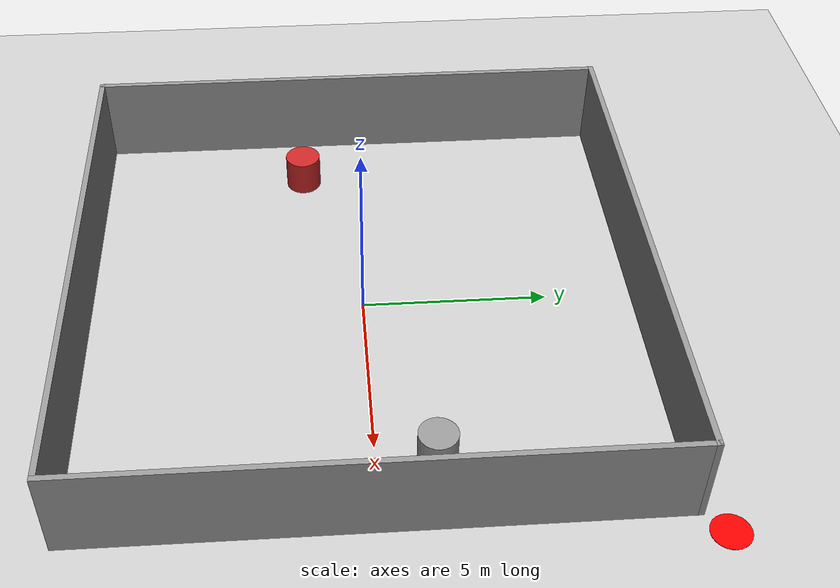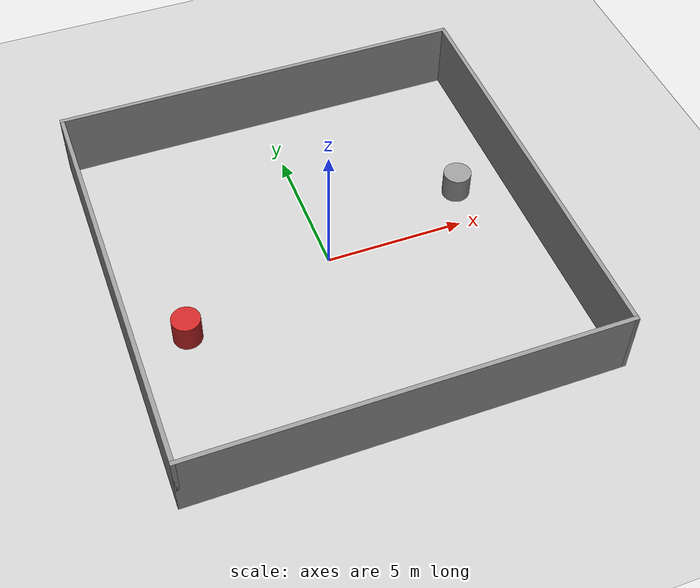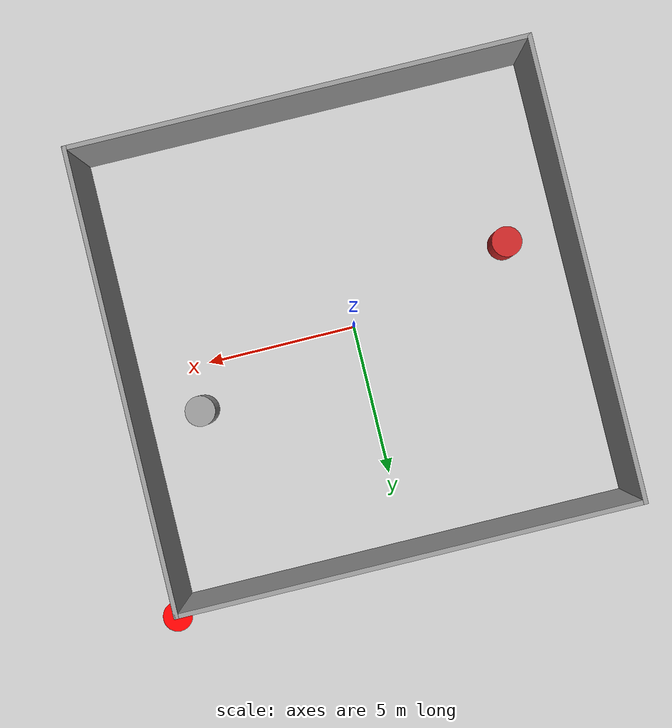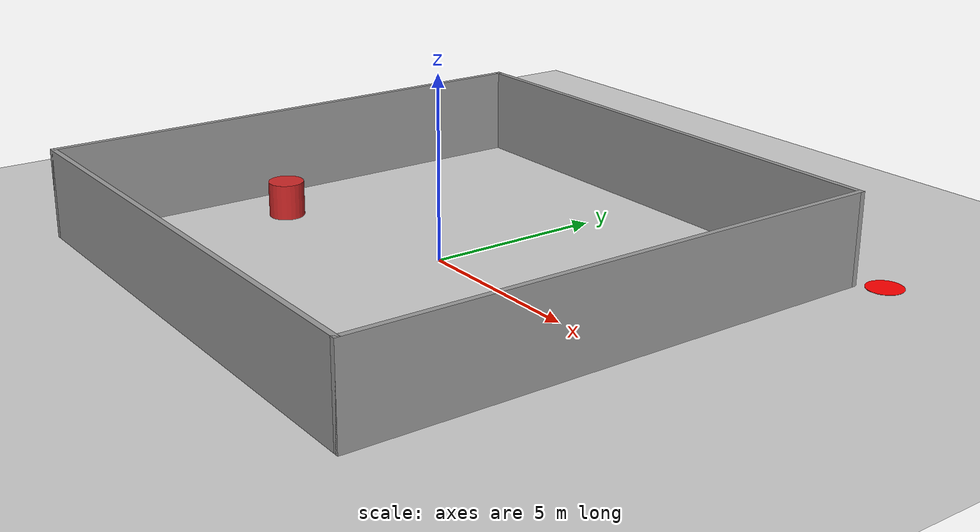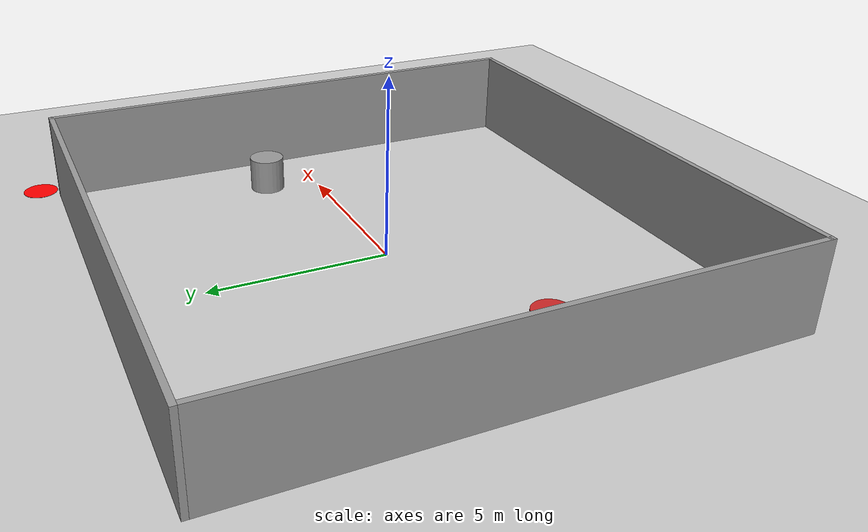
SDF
<?xml version="1.0" ?>
<sdf version="1.7">
  <world name="default">

    <!-- World properties -->
    <gravity>0 0 -9.8</gravity>
    <magnetic_field>6e-06 2.3e-05 -4.2e-05</magnetic_field>
    <atmosphere type='adiabatic'/>
    <scene>
      <ambient>0.4 0.4 0.4 1</ambient>
      <background>0.7 0.7 0.7 1</background>
      <shadows>0</shadows>
    </scene>
    <audio>
      <device>default</device>
    </audio>
    <wind/>
    <spherical_coordinates>
      <surface_model>EARTH_WGS84</surface_model>
      <latitude_deg>0</latitude_deg>
      <longitude_deg>0</longitude_deg>
      <elevation>0</elevation>
      <heading_deg>0</heading_deg>
    </spherical_coordinates>

    <physics type="ode">

      <!-- Physics x1 realtime-->
      <max_step_size>0.001</max_step_size>
      <real_time_update_rate>1000.0</real_time_update_rate>
      <real_time_factor>1</real_time_factor>

      <ode>
        <solver>
          <type>quick</type>
          <iters>150</iters>
          <precon_iters>0</precon_iters>
          <sor>1.400000</sor>
          <use_dynamic_moi_rescaling>1</use_dynamic_moi_rescaling>
        </solver>
        <constraints>
          <cfm>0.00001</cfm>
          <erp>0.2</erp>
          <contact_max_correcting_vel>2000.000000</contact_max_correcting_vel>
          <contact_surface_layer>0.01000</contact_surface_layer>
        </constraints>
      </ode>
    </physics>

    <plugin name="gazebo_ros_state" filename="libgazebo_ros_state.so">
      <ros>
        <namespace>/gazebo_drl</namespace>
        <argument>model_states:=model_states_plug</argument>
        <argument>link_states:=link_states_plug</argument>
      </ros>
      <update_rate>10.0</update_rate>
    </plugin>

    <!-- A camera -->
    <gui fullscreen='0'>
      <camera name='user_camera'>
        <pose>0 0 27.8175 3.14159 1.57079 3.14159</pose>
        <view_controller>orbit</view_controller>
        <projection_type>perspective</projection_type>
      </camera>
    </gui>

    <!-- A global light source -->
    <include>
      <uri>model://sun</uri>
    </include>

    <!-- A ground plane -->
    <include>
      <uri>model://ground_plane</uri>
    </include>

    <!-- Goal -->
    <include>
      <uri>model://goal_box</uri>
      <pose>8.0 8.0 0.0 0 0 0</pose>
    </include>

    <!-- Walls -->

    <include>
      <uri>model://wall_outler</uri>
    </include>

    <!-- Obstacle -->

    <include>
      <uri>model://cylinder_obstacle_1</uri>
      <pose>5.5 1.5 0.5 0 0 0</pose>
    </include>

    <include>
      <uri>model://cylinder_obstacle_2</uri>
      <pose>-5.5 -1.5 0.5 0 0 0</pose>
    </include>

  </world>
</sdf>

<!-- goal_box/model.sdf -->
<sdf version='1.6'>
  <model name='goal_box'>
    <pose frame=''>0 0 0 0 -0 -1.5708</pose>
    <link name='goal_box'>
      <visual name='goal_box'>
        <pose frame=''>0 0 0.0005 0 -0 0</pose>
        <geometry>
          <cylinder>
            <radius>0.5</radius>
            <length>0.01</length>
          </cylinder>
        </geometry>
        <material>
          <script>
            <uri>file://media/materials/scripts/gazebo.material</uri>
            <name>Gazebo/Grey</name>
          </script>
          <ambient>1 0 0 1</ambient>
        </material>
      </visual>
      <pose frame=''>0 0 0 0 -0 0</pose>
    </link>
    <static>1</static>
  </model>
</sdf>

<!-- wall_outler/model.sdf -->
<sdf version='1.7'>
  <model name='wall_outler'>
    <pose>0 0 0 0 -0 0</pose>
    <link name='Wall_1'>
      <collision name='Wall_1_Collision'>
        <geometry>
          <box>
            <size>15 0.15 2.5</size>
          </box>
        </geometry>
        <pose>0 0 1.25 0 -0 0</pose>
      </collision>
      <visual name='Wall_1_Visual'>
        <pose>0 0 1.25 0 -0 0</pose>
        <geometry>
          <box>
            <size>15 0.15 2.5</size>
          </box>
        </geometry>
        <material>
          <script>
            <uri>file://media/materials/scripts/gazebo.material</uri>
            <name>Gazebo/Grey</name>
          </script>
          <ambient>1 1 1 1</ambient>
        </material>
        <meta>
          <layer>0</layer>
        </meta>
      </visual>
      <pose>-0 -7.425 0 0 -0 0</pose>
    </link>
    <link name='Wall_2'>
      <collision name='Wall_2_Collision'>
        <geometry>
          <box>
            <size>15 0.15 2.5</size>
          </box>
        </geometry>
        <pose>0 0 1.25 0 -0 0</pose>
      </collision>
      <visual name='Wall_2_Visual'>
        <pose>0 0 1.25 0 -0 0</pose>
        <geometry>
          <box>
            <size>15 0.15 2.5</size>
          </box>
        </geometry>
        <material>
          <script>
            <uri>file://media/materials/scripts/gazebo.material</uri>
            <name>Gazebo/Grey</name>
          </script>
          <ambient>1 1 1 1</ambient>
        </material>
        <meta>
          <layer>0</layer>
        </meta>
      </visual>
      <pose>7.425 -0 0 0 -0 1.5708</pose>
    </link>
    <link name='Wall_3'>
      <collision name='Wall_3_Collision'>
        <geometry>
          <box>
            <size>15 0.15 2.5</size>
          </box>
        </geometry>
        <pose>0 0 1.25 0 -0 0</pose>
      </collision>
      <visual name='Wall_3_Visual'>
        <pose>0 0 1.25 0 -0 0</pose>
        <geometry>
          <box>
            <size>15 0.15 2.5</size>
          </box>
        </geometry>
        <material>
          <script>
            <uri>file://media/materials/scripts/gazebo.material</uri>
            <name>Gazebo/Grey</name>
          </script>
          <ambient>1 1 1 1</ambient>
        </material>
        <meta>
          <layer>0</layer>
        </meta>
      </visual>
      <pose>-0 7.425 0 0 -0 3.14159</pose>
    </link>
    <link name='Wall_4'>
      <collision name='Wall_4_Collision'>
        <geometry>
          <box>
            <size>15 0.15 2.5</size>
          </box>
        </geometry>
        <pose>0 0 1.25 0 -0 0</pose>
      </collision>
      <visual name='Wall_4_Visual'>
        <pose>0 0 1.25 0 -0 0</pose>
        <geometry>
          <box>
            <size>15 0.15 2.5</size>
          </box>
        </geometry>
        <material>
          <script>
            <uri>file://media/materials/scripts/gazebo.material</uri>
            <name>Gazebo/Grey</name>
          </script>
          <ambient>1 1 1 1</ambient>
        </material>
        <meta>
          <layer>0</layer>
        </meta>
      </visual>
      <pose>-7.425 -0 0 0 -0 -1.5708</pose>
    </link>
    <static>1</static>
  </model>
</sdf>

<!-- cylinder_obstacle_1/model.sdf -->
<sdf version='1.7'>
  <model name='cylinder_obstacle_1'>
    <link name='link_1'>
      <inertial>
        <mass>1</mass>
        <inertia>
          <ixx>0.145833</ixx>
          <ixy>0</ixy>
          <ixz>0</ixz>
          <iyy>0.145833</iyy>
          <iyz>0</iyz>
          <izz>0.125</izz>
        </inertia>
        <pose>0 0 0 0 -0 0</pose>
      </inertial>
      <pose>-0 0 0 0 -0 0</pose>
      <gravity>1</gravity>
      <self_collide>0</self_collide>
      <kinematic>1</kinematic>
      <enable_wind>0</enable_wind>
      <visual name='visual'>
        <pose>0 0 0 0 -0 0</pose>
        <geometry>
          <cylinder>
            <radius>0.5</radius>
            <length>1</length>
          </cylinder>
        </geometry>
        <material>
          <lighting>1</lighting>
          <script>
            <uri>file://media/materials/scripts/gazebo.material</uri>
            <name>Gazebo/Grey</name>
          </script>
          <shader type='pixel'>
            <normal_map>__default__</normal_map>
          </shader>
          <ambient>0.3 0.3 0.3 1</ambient>
          <diffuse>0.7 0.7 0.7 1</diffuse>
          <specular>0.01 0.01 0.01 1</specular>
          <emissive>0 0 0 1</emissive>
        </material>
        <transparency>0</transparency>
        <cast_shadows>1</cast_shadows>
      </visual>
      <collision name='collision'>
        <laser_retro>0</laser_retro>
        <max_contacts>10</max_contacts>
        <pose>0 0 0 0 -0 0</pose>
        <geometry>
          <cylinder>
            <radius>0.5</radius>
            <length>1</length>
          </cylinder>
        </geometry>
        <surface>
          <friction>
            <ode>
              <mu>1</mu>
              <mu2>1</mu2>
              <fdir1>0 0 0</fdir1>
              <slip1>0</slip1>
              <slip2>0</slip2>
            </ode>
            <torsional>
              <coefficient>1</coefficient>
              <patch_radius>0</patch_radius>
              <surface_radius>0</surface_radius>
              <use_patch_radius>1</use_patch_radius>
              <ode>
                <slip>0</slip>
              </ode>
            </torsional>
          </friction>
          <bounce>
            <restitution_coefficient>0</restitution_coefficient>
            <threshold>1e+06</threshold>
          </bounce>
          <contact>
            <collide_without_contact>0</collide_without_contact>
            <collide_without_contact_bitmask>1</collide_without_contact_bitmask>
            <collide_bitmask>1</collide_bitmask>
            <ode>
              <soft_cfm>0</soft_cfm>
              <soft_erp>0.2</soft_erp>
              <kp>1e+13</kp>
              <kd>1</kd>
              <max_vel>0.01</max_vel>
              <min_depth>0</min_depth>
            </ode>
            <bullet>
              <split_impulse>1</split_impulse>
              <split_impulse_penetration_threshold>-0.01</split_impulse_penetration_threshold>
              <soft_cfm>0</soft_cfm>
              <soft_erp>0.2</soft_erp>
              <kp>1e+13</kp>
              <kd>1</kd>
            </bullet>
          </contact>
        </surface>
      </collision>
    </link>
    <static>0</static>
    <allow_auto_disable>1</allow_auto_disable>
  </model>
</sdf>

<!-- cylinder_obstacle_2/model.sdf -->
<sdf version='1.7'>
  <model name='cylinder_obstacle_2'>
    <link name='link_1'>
      <inertial>
        <mass>1</mass>
        <inertia>
          <ixx>0.145833</ixx>
          <ixy>0</ixy>
          <ixz>0</ixz>
          <iyy>0.145833</iyy>
          <iyz>0</iyz>
          <izz>0.125</izz>
        </inertia>
        <pose>0 0 0 0 -0 0</pose>
      </inertial>
      <pose>-0 0 0 0 -0 0</pose>
      <gravity>1</gravity>
      <self_collide>0</self_collide>
      <kinematic>1</kinematic>
      <enable_wind>0</enable_wind>
      <visual name='visual'>
        <pose>0 0 0 0 -0 0</pose>
        <geometry>
          <cylinder>
            <radius>0.5</radius>
            <length>1</length>
          </cylinder>
        </geometry>
        <material>
          <script>
            <uri>file://media/materials/scripts/gazebo.material</uri>
            <name>Gazebo/Red</name>
          </script>
        </material>
        <transparency>0</transparency>
        <cast_shadows>1</cast_shadows>
      </visual>
      <collision name='collision'>
        <laser_retro>0</laser_retro>
        <max_contacts>10</max_contacts>
        <pose>0 0 0 0 -0 0</pose>
        <geometry>
          <cylinder>
            <radius>0.5</radius>
            <length>1</length>
          </cylinder>
        </geometry>
        <surface>
          <friction>
            <ode>
              <mu>1</mu>
              <mu2>1</mu2>
              <fdir1>0 0 0</fdir1>
              <slip1>0</slip1>
              <slip2>0</slip2>
            </ode>
            <torsional>
              <coefficient>1</coefficient>
              <patch_radius>0</patch_radius>
              <surface_radius>0</surface_radius>
              <use_patch_radius>1</use_patch_radius>
              <ode>
                <slip>0</slip>
              </ode>
            </torsional>
          </friction>
          <bounce>
            <restitution_coefficient>0</restitution_coefficient>
            <threshold>1e+06</threshold>
          </bounce>
          <contact>
            <collide_without_contact>0</collide_without_contact>
            <collide_without_contact_bitmask>1</collide_without_contact_bitmask>
            <collide_bitmask>1</collide_bitmask>
            <ode>
              <soft_cfm>0</soft_cfm>
              <soft_erp>0.2</soft_erp>
              <kp>1e+13</kp>
              <kd>1</kd>
              <max_vel>0.01</max_vel>
              <min_depth>0</min_depth>
            </ode>
            <bullet>
              <split_impulse>1</split_impulse>
              <split_impulse_penetration_threshold>-0.01</split_impulse_penetration_threshold>
              <soft_cfm>0</soft_cfm>
              <soft_erp>0.2</soft_erp>
              <kp>1e+13</kp>
              <kd>1</kd>
            </bullet>
          </contact>
        </surface>
      </collision>
    </link>
    <static>0</static>
    <allow_auto_disable>1</allow_auto_disable>
  </model>
</sdf>
